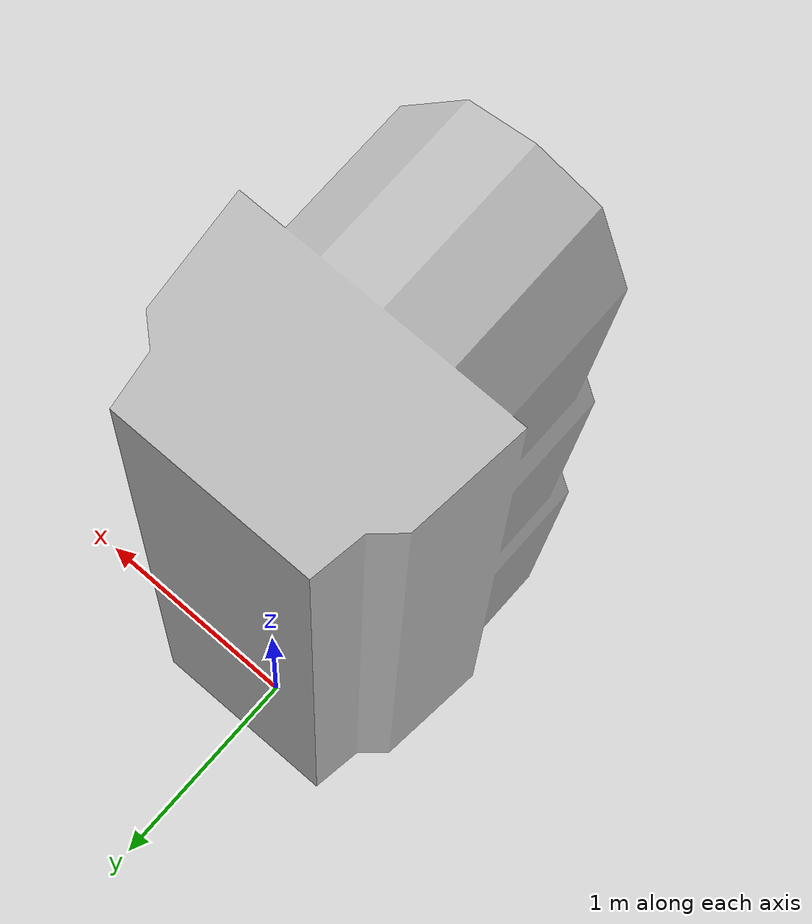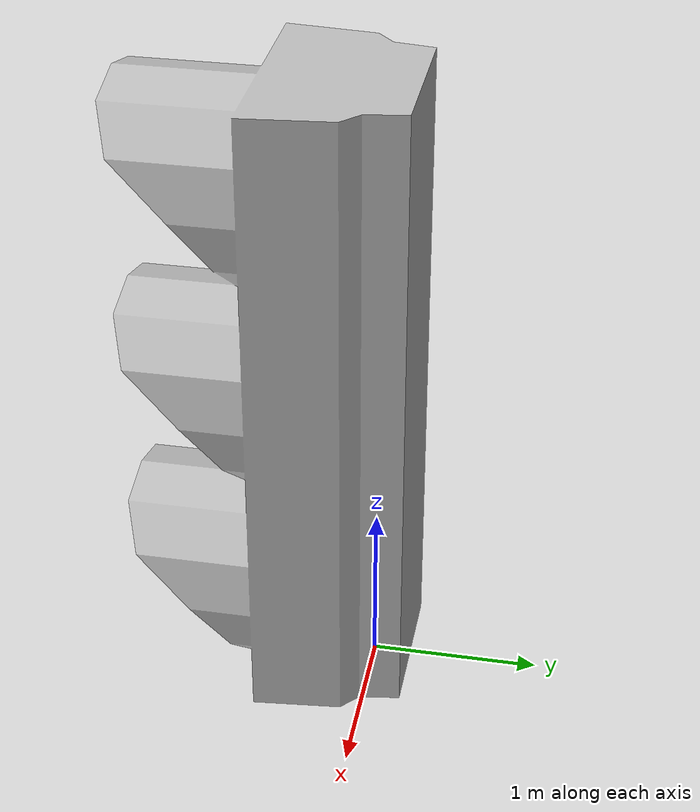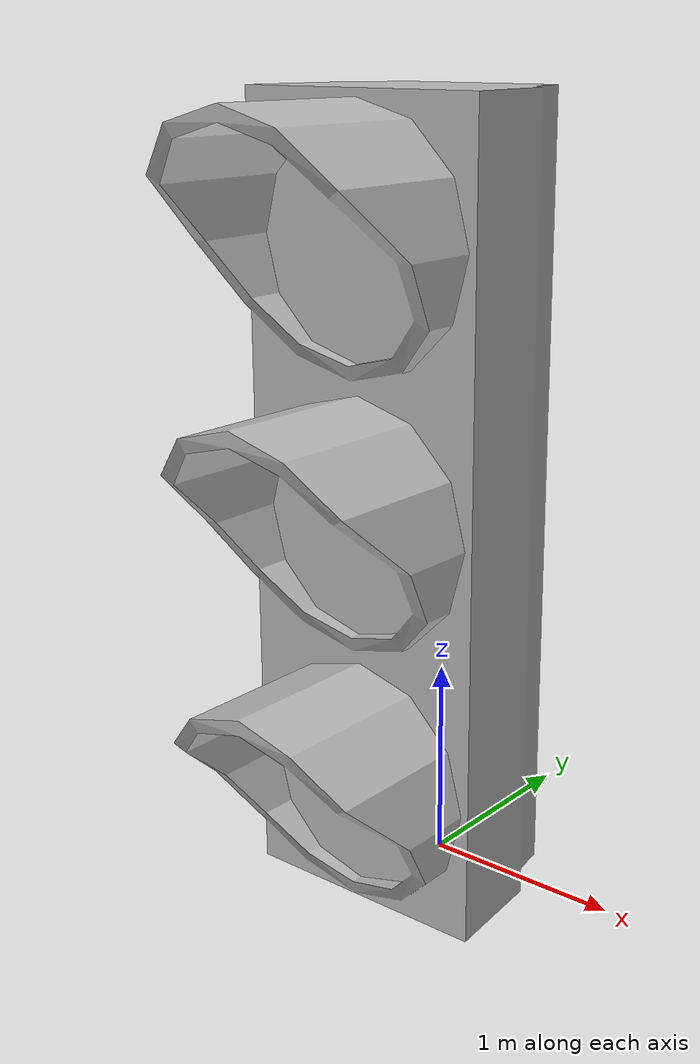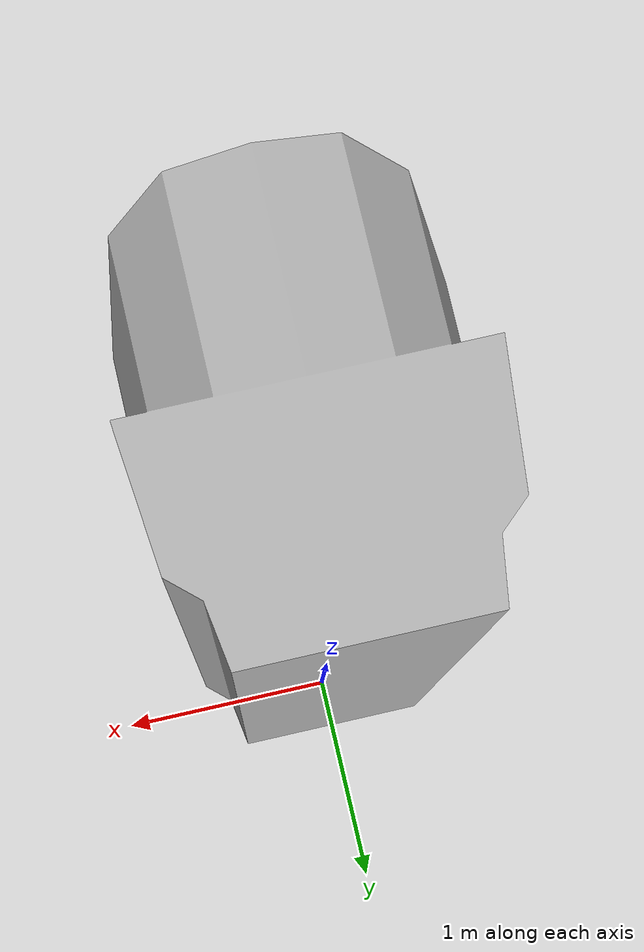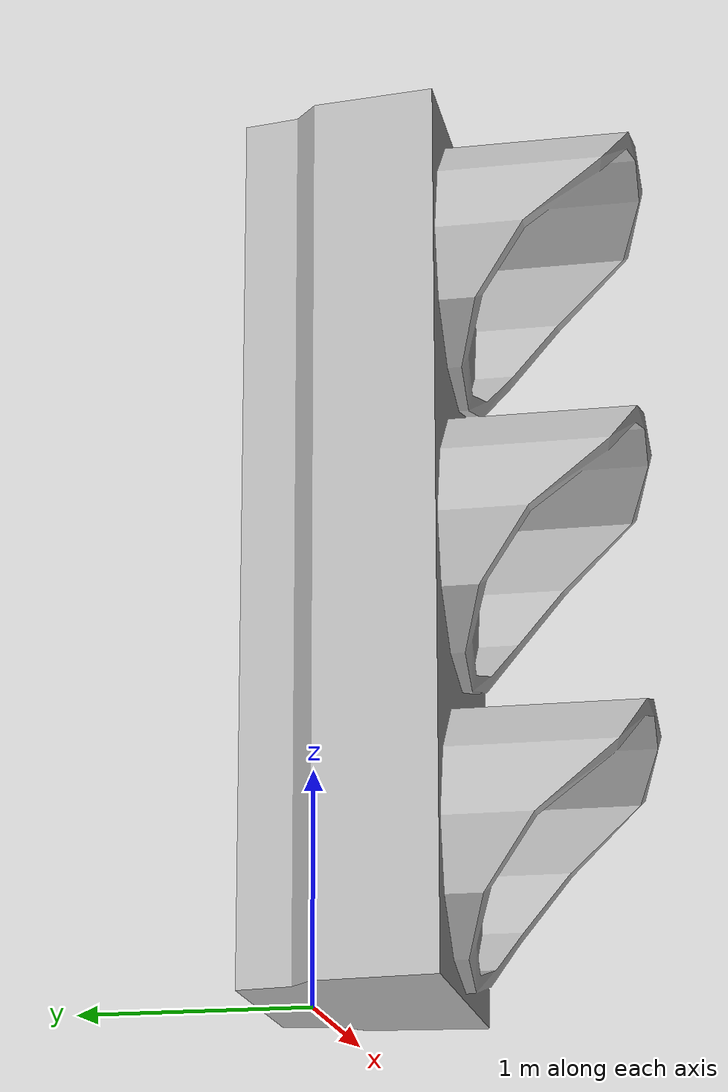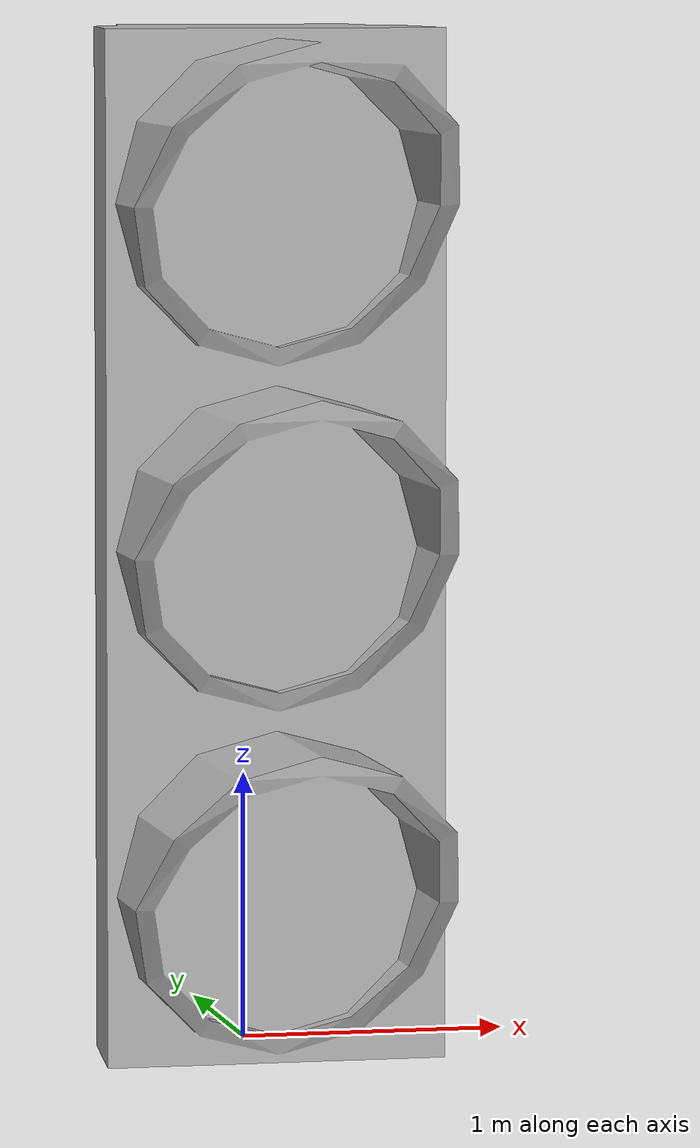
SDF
<?xml version="1.0" ?>
<sdf version="1.6">
  <model name="stop_light">
    <static>true</static>

    <!-- scale=0.05 → mesh yüksekliği ~3.8m; pose z=3.9 → taban yerde -->
    <pose>0 0 3.9 0 0 0</pose>

    <link name="link">

      <collision name="collision">
        <geometry>
          <mesh>
            <uri>model://stop_light/meshes/stop_light.obj</uri>
            <scale>0.05 0.05 0.05</scale>
          </mesh>
        </geometry>
      </collision>

      <visual name="frame">
        <geometry>
          <mesh>
            <uri>model://stop_light/meshes/stop_light.obj</uri>
            <scale>0.05 0.05 0.05</scale>
          </mesh>
        </geometry>
      </visual>

      <!-- Dark (off) lens spheres — pole top'ına kümeli, tl_lamp glowing sphere'larla hizalı -->
      <visual name="red_off">
        <pose>0 0 -0.40 0 0 0</pose>
        <geometry><sphere><radius>0.22</radius></sphere></geometry>
        <material><ambient>0.15 0.0 0.0 1</ambient><diffuse>0.10 0.0 0.0 1</diffuse></material>
      </visual>
      <visual name="yellow_off">
        <pose>0 0 -0.75 0 0 0</pose>
        <geometry><sphere><radius>0.22</radius></sphere></geometry>
        <material><ambient>0.15 0.12 0.0 1</ambient><diffuse>0.10 0.08 0.0 1</diffuse></material>
      </visual>
      <visual name="green_off">
        <pose>0 0 -1.10 0 0 0</pose>
        <geometry><sphere><radius>0.22</radius></sphere></geometry>
        <material><ambient>0.0 0.15 0.0 1</ambient><diffuse>0.0 0.10 0.0 1</diffuse></material>
      </visual>

    </link>
  </model>
</sdf>
